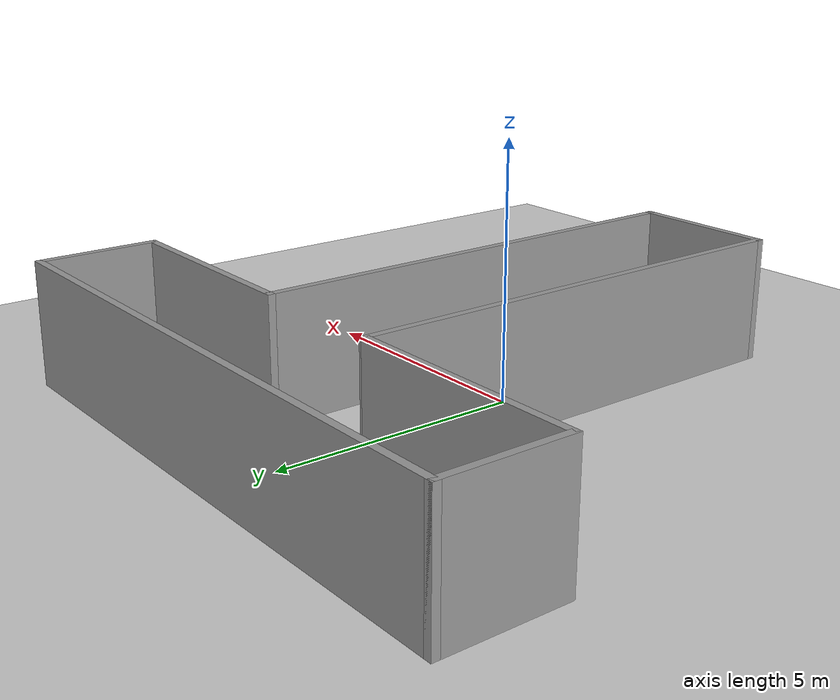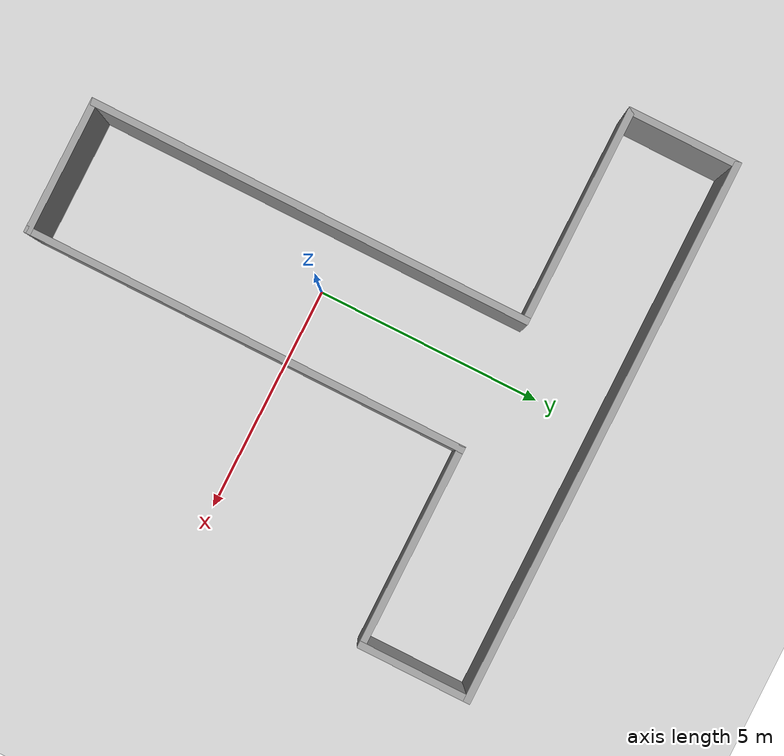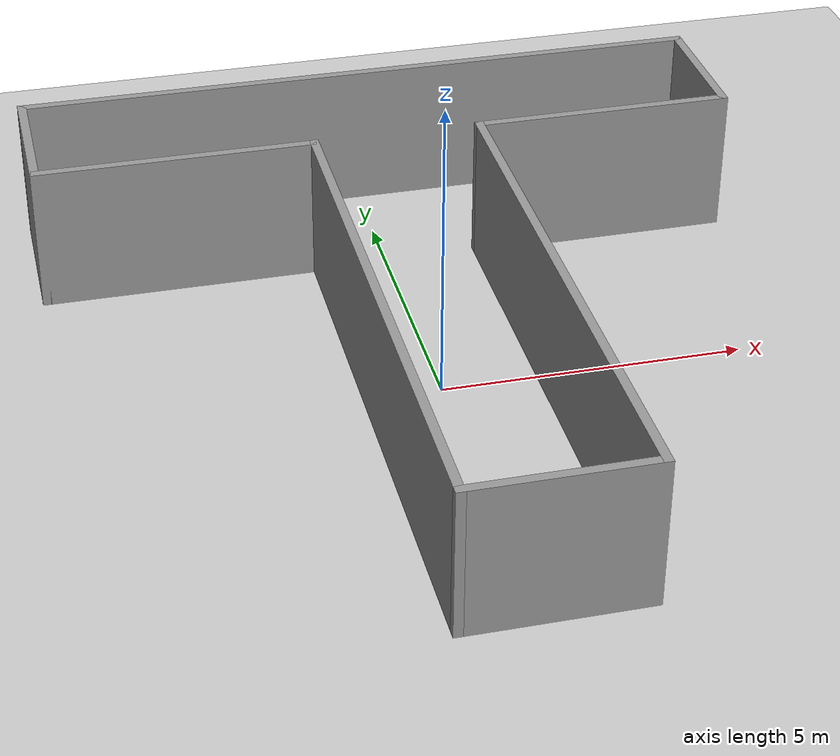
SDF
<sdf version="1.7">
 <world name="default">
  <light name="sun" type="directional">
   <pose>0 0 10 0 -0 0</pose>
   <diffuse>0.8 0.8 0.8 1</diffuse>
   <specular>0.2 0.2 0.2 1</specular>
   <attenuation>
    <range>1000</range>
    <constant>0.9</constant>
    <linear>0.01</linear>
    <quadratic>0.001</quadratic>
   </attenuation>
   <direction>-0.5 0.1 -0.9</direction>
   <spot><inner_angle>0</inner_angle><outer_angle>0</outer_angle><falloff>0</falloff></spot>
  </light>
  <model name="ground_plane">
   <static>1</static>
   <link name="link">
    <collision name="collision">
     <geometry><plane><normal>0 0 1</normal><size>100 100</size></plane></geometry>
     <surface>
      <contact><collide_bitmask>65535</collide_bitmask></contact>
      <friction><ode><mu>100</mu><mu2>50</mu2></ode></friction>
     </surface>
    </collision>
    <visual name="visual">
     <cast_shadows>0</cast_shadows>
     <geometry><plane><normal>0 0 1</normal><size>100 100</size></plane></geometry>
     <material>
      <script><uri>file://media/materials/scripts/gazebo.material</uri><name>Gazebo/Grey</name></script>
     </material>
    </visual>
   </link>
  </model>
  <gravity>0 0 -9.8</gravity>
  <magnetic_field>6e-06 2.3e-05 -4.2e-05</magnetic_field>
  <atmosphere type="adiabatic"/>
  <physics type="ode">
   <real_time_update_rate>1000.0</real_time_update_rate>
   <max_step_size>0.001</max_step_size>
   <real_time_factor>1</real_time_factor>
   <ode>
    <solver>
     <type>quick</type>
     <iters>150</iters>
     <precon_iters>0</precon_iters>
     <sor>1.400000</sor>
     <use_dynamic_moi_rescaling>1</use_dynamic_moi_rescaling>
    </solver>
    <constraints>
     <cfm>0.00001</cfm>
     <erp>0.2</erp>
     <contact_max_correcting_vel>2000.000000</contact_max_correcting_vel>
     <contact_surface_layer>0.01000</contact_surface_layer>
    </constraints>
   </ode>
  </physics>
  <scene><ambient>0.4 0.4 0.4 1</ambient><background>0.7 0.7 0.7 1</background><shadows>1</shadows></scene>
  <spherical_coordinates>
   <surface_model>EARTH_WGS84</surface_model>
   <latitude_deg>0</latitude_deg>
   <longitude_deg>0</longitude_deg>
   <elevation>0</elevation>
   <heading_deg>0</heading_deg>
  </spherical_coordinates>
  <gravity>0 0 -9.8</gravity>
  <magnetic_field>6e-06 2.3e-05 -4.2e-05</magnetic_field>
  <atmosphere type="adiabatic"/>
  <physics type="ode">
   <max_step_size>0.001</max_step_size>
   <real_time_factor>1</real_time_factor>
   <real_time_update_rate>1000</real_time_update_rate>
  </physics>
  <scene><ambient>0.4 0.4 0.4 1</ambient><background>0.7 0.7 0.7 1</background><shadows>1</shadows></scene>
  <spherical_coordinates>
   <surface_model>EARTH_WGS84</surface_model>
   <latitude_deg>0</latitude_deg>
   <longitude_deg>0</longitude_deg>
   <elevation>0</elevation>
   <heading_deg>0</heading_deg>
  </spherical_coordinates>
  <model name="T_section">
   <pose>0.070642 0.368146 0 0 -0 0</pose>
   <link name="Wall_52">
    <collision name="Wall_52_Collision">
     <geometry><box><size>12 0.15 2.5</size></box></geometry>
     <pose>0 0 1.25 0 -0 0</pose>
    </collision>
    <visual name="Wall_52_Visual">
     <pose>0 0 1.25 0 -0 0</pose>
     <geometry><box><size>12 0.15 2.5</size></box></geometry>
     <material>
      <script><uri>file://media/materials/scripts/gazebo.material</uri><name>Gazebo/Grey</name></script>
      <ambient>0.180392 0.203922 0.211765 1</ambient>
     </material>
     <meta><layer>0</layer></meta>
    </visual>
    <pose>0 5.975 0 0 -0 0</pose>
   </link>
   <link name="Wall_53">
    <collision name="Wall_53_Collision">
     <geometry><box><size>2.5 0.15 2.5</size></box></geometry>
     <pose>0 0 1.25 0 -0 0</pose>
    </collision>
    <visual name="Wall_53_Visual">
     <pose>0 0 1.25 0 -0 0</pose>
     <geometry><box><size>2.5 0.15 2.5</size></box></geometry>
     <material>
      <script><uri>file://media/materials/scripts/gazebo.material</uri><name>Gazebo/Grey</name></script>
      <ambient>0.180392 0.203922 0.211765 1</ambient>
     </material>
     <meta><layer>0</layer></meta>
    </visual>
    <pose>5.925 4.8 0 0 -0 -1.5708</pose>
   </link>
   <link name="Wall_54">
    <collision name="Wall_54_Collision">
     <geometry><box><size>4.5 0.15 2.5</size></box></geometry>
     <pose>0 0 1.25 0 -0 0</pose>
    </collision>
    <visual name="Wall_54_Visual">
     <pose>0 0 1.25 0 -0 0</pose>
     <geometry><box><size>4.5 0.15 2.5</size></box></geometry>
     <material>
      <script><uri>file://media/materials/scripts/gazebo.material</uri><name>Gazebo/Grey</name></script>
      <ambient>0.180392 0.203922 0.211765 1</ambient>
     </material>
     <meta><layer>0</layer></meta>
    </visual>
    <pose>3.75 3.625 0 0 -0 3.14159</pose>
   </link>
   <link name="Wall_55">
    <collision name="Wall_55_Collision">
     <geometry><box><size>9.75 0.15 2.5</size></box></geometry>
     <pose>0 0 1.25 0 -0 0</pose>
    </collision>
    <visual name="Wall_55_Visual">
     <pose>0 0 1.25 0 -0 0</pose>
     <geometry><box><size>9.75 0.15 2.5</size></box></geometry>
     <material>
      <script><uri>file://media/materials/scripts/gazebo.material</uri><name>Gazebo/Grey</name></script>
      <ambient>0.180392 0.203922 0.211765 1</ambient>
     </material>
     <meta><layer>0</layer></meta>
    </visual>
    <pose>1.575 -1.175 0 0 -0 -1.5708</pose>
   </link>
   <link name="Wall_56">
    <collision name="Wall_56_Collision">
     <geometry><box><size>3 0.15 2.5</size></box></geometry>
     <pose>0 0 1.25 0 -0 0</pose>
    </collision>
    <visual name="Wall_56_Visual">
     <pose>0 0 1.25 0 -0 0</pose>
     <geometry><box><size>3 0.15 2.5</size></box></geometry>
     <material>
      <script><uri>file://media/materials/scripts/gazebo.material</uri><name>Gazebo/Grey</name></script>
      <ambient>0.180392 0.203922 0.211765 1</ambient>
     </material>
     <meta><layer>0</layer></meta>
    </visual>
    <pose>0.15 -5.975 0 0 -0 3.14159</pose>
   </link>
   <link name="Wall_57">
    <collision name="Wall_57_Collision">
     <geometry><box><size>9.75 0.15 2.5</size></box></geometry>
     <pose>0 0 1.25 0 -0 0</pose>
    </collision>
    <visual name="Wall_57_Visual">
     <pose>0 0 1.25 0 -0 0</pose>
     <geometry><box><size>9.75 0.15 2.5</size></box></geometry>
     <material>
      <script><uri>file://media/materials/scripts/gazebo.material</uri><name>Gazebo/Grey</name></script>
      <ambient>0.180392 0.203922 0.211765 1</ambient>
     </material>
     <meta><layer>0</layer></meta>
    </visual>
    <pose>-1.275 -1.175 0 0 -0 1.5708</pose>
   </link>
   <link name="Wall_59">
    <collision name="Wall_59_Collision">
     <geometry><box><size>2.5 0.15 2.5</size></box></geometry>
     <pose>0 0 1.25 0 -0 0</pose>
    </collision>
    <visual name="Wall_59_Visual">
     <pose>0 0 1.25 0 -0 0</pose>
     <geometry><box><size>2.5 0.15 2.5</size></box></geometry>
     <material>
      <script><uri>file://media/materials/scripts/gazebo.material</uri><name>Gazebo/Grey</name></script>
      <ambient>0.180392 0.203922 0.211765 1</ambient>
     </material>
     <meta><layer>0</layer></meta>
    </visual>
    <pose>-5.925 4.8 0 0 -0 -1.5708</pose>
   </link>
   <link name="Wall_60">
    <collision name="Wall_60_Collision">
     <geometry><box><size>4.75 0.15 2.5</size></box></geometry>
     <pose>0 0 1.25 0 -0 0</pose>
    </collision>
    <visual name="Wall_60_Visual">
     <pose>0 0 1.25 0 -0 0</pose>
     <geometry><box><size>4.75 0.15 2.5</size></box></geometry>
     <material>
      <script><uri>file://media/materials/scripts/gazebo.material</uri><name>Gazebo/Grey</name></script>
      <ambient>0.180392 0.203922 0.211765 1</ambient>
     </material>
     <meta><layer>0</layer></meta>
    </visual>
    <pose>-3.625 3.625 0 0 -0 0</pose>
   </link>
   <static>1</static>
  </model>
 </world>
</sdf>
